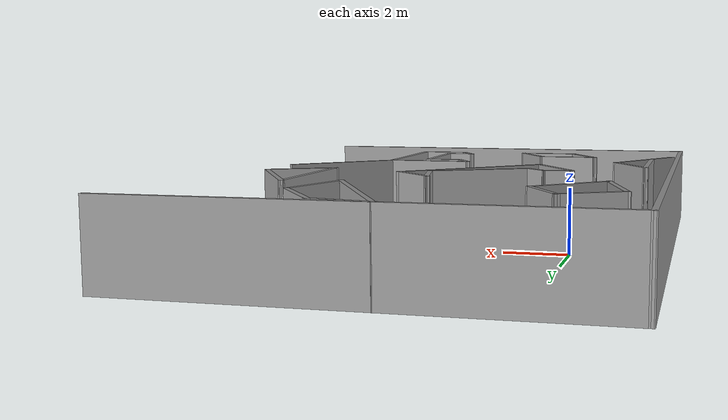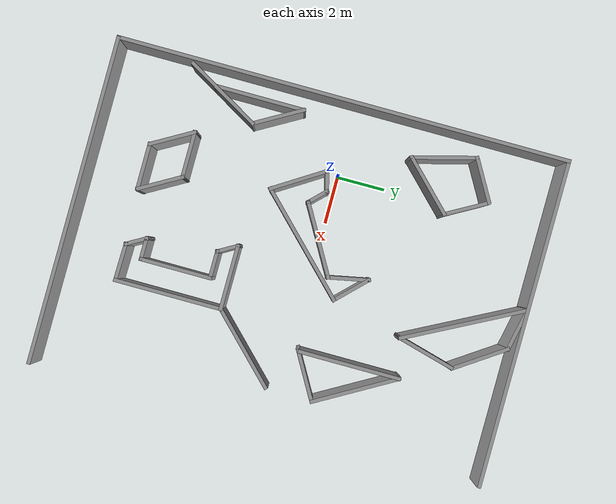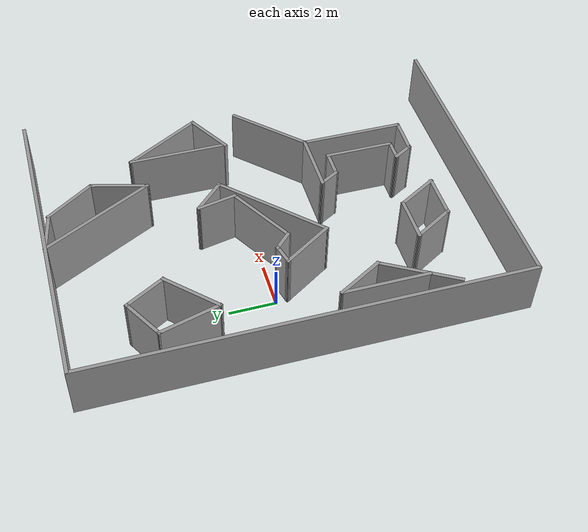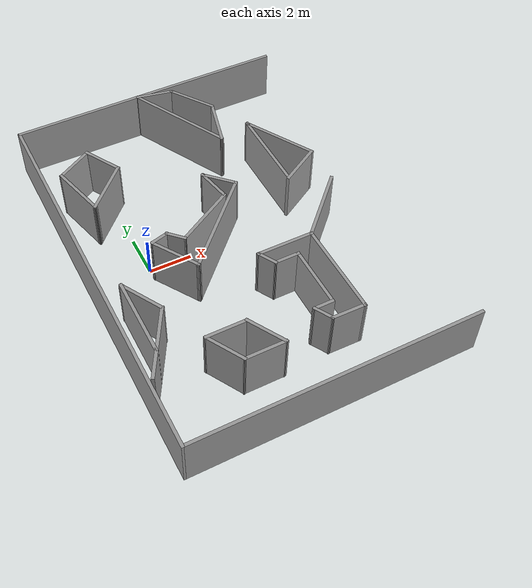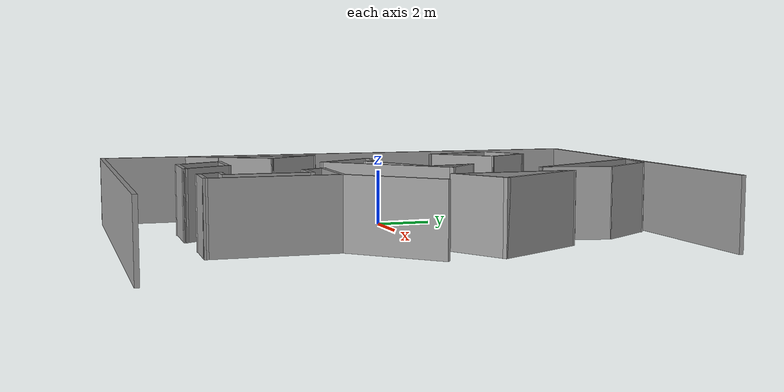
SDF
<?xml version='1.0'?>
<sdf version='1.7'>
  <model name='new20240614_v2'>
    <pose>3.81273 -0.610792 0 0 -0 0</pose>

    <link name='Wall_25'>
      <collision name='Wall_25_Collision'>
        <geometry>
          <box>
            <size>13.5374 0.15 2.5</size>
          </box>
        </geometry>
        <pose>0 0 1.25 0 -0 0</pose>
      </collision>
      <visual name='Wall_25_Visual'>
        <pose>0 0 1.25 0 -0 0</pose>
        <geometry>
          <box>
            <size>13.5374 0.15 2.5</size>
          </box>
        </geometry>
        <material>
          <script>
            <uri>file://media/materials/scripts/gazebo.material</uri>
            <name>Gazebo/Grey</name>
          </script>
          <ambient>1 1 1 1</ambient>
        </material>
        <meta>
          <layer>0</layer>
        </meta>
      </visual>
      <pose>0.015259 -9.30316 0 0 -0 3.1406</pose>
    </link>
    <link name='Wall_26'>
      <collision name='Wall_26_Collision'>
        <geometry>
          <box>
            <size>18.75 0.15 2.5</size>
          </box>
        </geometry>
        <pose>0 0 1.25 0 -0 0</pose>
      </collision>
      <visual name='Wall_26_Visual'>
        <pose>0 0 1.25 0 -0 0</pose>
        <geometry>
          <box>
            <size>18.75 0.15 2.5</size>
          </box>
        </geometry>
        <material>
          <script>
            <uri>file://media/materials/scripts/gazebo.material</uri>
            <name>Gazebo/Grey</name>
          </script>
          <ambient>1 1 1 1</ambient>
        </material>
        <meta>
          <layer>0</layer>
        </meta>
      </visual>
      <pose>-6.70904 0.003487 0 0 -0 1.5708</pose>
    </link>
    <link name='Wall_27'>
      <collision name='Wall_27_Collision'>
        <geometry>
          <box>
            <size>13.5374 0.15 2.5</size>
          </box>
        </geometry>
        <pose>0 0 1.25 0 -0 0</pose>
      </collision>
      <visual name='Wall_27_Visual'>
        <pose>0 0 1.25 0 -0 0</pose>
        <geometry>
          <box>
            <size>13.5374 0.15 2.5</size>
          </box>
        </geometry>
        <material>
          <script>
            <uri>file://media/materials/scripts/gazebo.material</uri>
            <name>Gazebo/Grey</name>
          </script>
          <ambient>1 1 1 1</ambient>
        </material>
        <meta>
          <layer>0</layer>
        </meta>
      </visual>
      <pose>0.015259 9.29683 0 0 -0 -0.000994</pose>
    </link>
    <link name='Wall_32'>
      <collision name='Wall_32_Collision'>
        <geometry>
          <box>
            <size>2 0.15 2.5</size>
          </box>
        </geometry>
        <pose>0 0 1.25 0 -0 0</pose>
      </collision>
      <visual name='Wall_32_Visual'>
        <pose>0 0 1.25 0 -0 0</pose>
        <geometry>
          <box>
            <size>2 0.15 2.5</size>
          </box>
        </geometry>
        <material>
          <script>
            <uri>file://media/materials/scripts/gazebo.material</uri>
            <name>Gazebo/Grey</name>
          </script>
          <ambient>1 1 1 1</ambient>
        </material>
        <meta>
          <layer>0</layer>
        </meta>
      </visual>
      <pose>-3.40506 -6.16944 0 0 -0 2.0944</pose>
    </link>
    <link name='Wall_33'>
      <collision name='Wall_33_Collision'>
        <geometry>
          <box>
            <size>2 0.15 2.5</size>
          </box>
        </geometry>
        <pose>0 0 1.25 0 -0 0</pose>
      </collision>
      <visual name='Wall_33_Visual'>
        <pose>0 0 1.25 0 -0 0</pose>
        <geometry>
          <box>
            <size>2 0.15 2.5</size>
          </box>
        </geometry>
        <material>
          <script>
            <uri>file://media/materials/scripts/gazebo.material</uri>
            <name>Gazebo/Grey</name>
          </script>
          <ambient>1 1 1 1</ambient>
        </material>
        <meta>
          <layer>0</layer>
        </meta>
      </visual>
      <pose>-2.94256 -5.36836 0 0 -0 0</pose>
    </link>
    <link name='Wall_34'>
      <collision name='Wall_34_Collision'>
        <geometry>
          <box>
            <size>2 0.15 2.5</size>
          </box>
        </geometry>
        <pose>0 0 1.25 0 -0 0</pose>
      </collision>
      <visual name='Wall_34_Visual'>
        <pose>0 0 1.25 0 -0 0</pose>
        <geometry>
          <box>
            <size>2 0.15 2.5</size>
          </box>
        </geometry>
        <material>
          <script>
            <uri>file://media/materials/scripts/gazebo.material</uri>
            <name>Gazebo/Grey</name>
          </script>
          <ambient>1 1 1 1</ambient>
        </material>
        <meta>
          <layer>0</layer>
        </meta>
      </visual>
      <pose>-1.55506 -6.16944 0 0 -0 -1.0472</pose>
    </link>
    <link name='Wall_35'>
      <collision name='Wall_35_Collision'>
        <geometry>
          <box>
            <size>2 0.15 2.5</size>
          </box>
        </geometry>
        <pose>0 0 1.25 0 -0 0</pose>
      </collision>
      <visual name='Wall_35_Visual'>
        <pose>0 0 1.25 0 -0 0</pose>
        <geometry>
          <box>
            <size>2 0.15 2.5</size>
          </box>
        </geometry>
        <material>
          <script>
            <uri>file://media/materials/scripts/gazebo.material</uri>
            <name>Gazebo/Grey</name>
          </script>
          <ambient>1 1 1 1</ambient>
        </material>
        <meta>
          <layer>0</layer>
        </meta>
      </visual>
      <pose>-2.01756 -6.97051 0 0 -0 3.14159</pose>
    </link>
    <link name='Wall_37'>
      <collision name='Wall_37_Collision'>
        <geometry>
          <box>
            <size>3.5 0.15 2.5</size>
          </box>
        </geometry>
        <pose>0 0 1.25 0 -0 0</pose>
      </collision>
      <visual name='Wall_37_Visual'>
        <pose>0 0 1.25 0 -0 0</pose>
        <geometry>
          <box>
            <size>3.5 0.15 2.5</size>
          </box>
        </geometry>
        <material>
          <script>
            <uri>file://media/materials/scripts/gazebo.material</uri>
            <name>Gazebo/Grey</name>
          </script>
          <ambient>1 1 1 1</ambient>
        </material>
        <meta>
          <layer>0</layer>
        </meta>
      </visual>
      <pose>-5.65353 -4.69398 0 0 -0 1.0472</pose>
    </link>
    <link name='Wall_38'>
      <collision name='Wall_38_Collision'>
        <geometry>
          <box>
            <size>2.25 0.15 2.5</size>
          </box>
        </geometry>
        <pose>0 0 1.25 0 -0 0</pose>
      </collision>
      <visual name='Wall_38_Visual'>
        <pose>0 0 1.25 0 -0 0</pose>
        <geometry>
          <box>
            <size>2.25 0.15 2.5</size>
          </box>
        </geometry>
        <material>
          <script>
            <uri>file://media/materials/scripts/gazebo.material</uri>
            <name>Gazebo/Grey</name>
          </script>
          <ambient>1 1 1 1</ambient>
        </material>
        <meta>
          <layer>0</layer>
        </meta>
      </visual>
      <pose>-5.34103 -2.33406 0 0 -0 2.0944</pose>
    </link>
    <link name='Wall_39'>
      <collision name='Wall_39_Collision'>
        <geometry>
          <box>
            <size>3.75 0.15 2.5</size>
          </box>
        </geometry>
        <pose>0 0 1.25 0 -0 0</pose>
      </collision>
      <visual name='Wall_39_Visual'>
        <pose>0 0 1.25 0 -0 0</pose>
        <geometry>
          <box>
            <size>3.75 0.15 2.5</size>
          </box>
        </geometry>
        <material>
          <script>
            <uri>file://media/materials/scripts/gazebo.material</uri>
            <name>Gazebo/Grey</name>
          </script>
          <ambient>1 1 1 1</ambient>
        </material>
        <meta>
          <layer>0</layer>
        </meta>
      </visual>
      <pose>-5.86603 -3.22474 0 0 -0 -1.5708</pose>
    </link>
    <link name='Wall_43'>
      <collision name='Wall_43_Collision'>
        <geometry>
          <box>
            <size>2.50852 0.15 2.5</size>
          </box>
        </geometry>
        <pose>0 0 1.25 0 -0 0</pose>
      </collision>
      <visual name='Wall_43_Visual'>
        <pose>0 0 1.25 0 -0 0</pose>
        <geometry>
          <box>
            <size>2.50852 0.15 2.5</size>
          </box>
        </geometry>
        <material>
          <script>
            <uri>file://media/materials/scripts/gazebo.material</uri>
            <name>Gazebo/Grey</name>
          </script>
          <ambient>1 1 1 1</ambient>
        </material>
        <meta>
          <layer>0</layer>
        </meta>
      </visual>
      <pose>-3.13755 -0.873678 0 0 -0 -1.00315</pose>
    </link>
    <link name='Wall_44'>
      <collision name='Wall_44_Collision'>
        <geometry>
          <box>
            <size>5.25 0.15 2.5</size>
          </box>
        </geometry>
        <pose>0 0 1.25 0 -0 0</pose>
      </collision>
      <visual name='Wall_44_Visual'>
        <pose>0 0 1.25 0 -0 0</pose>
        <geometry>
          <box>
            <size>5.25 0.15 2.5</size>
          </box>
        </geometry>
        <material>
          <script>
            <uri>file://media/materials/scripts/gazebo.material</uri>
            <name>Gazebo/Grey</name>
          </script>
          <ambient>1 1 1 1</ambient>
        </material>
        <meta>
          <layer>0</layer>
        </meta>
      </visual>
      <pose>-0.700408 -0.064873 0 0 -0 0.785398</pose>
    </link>
    <link name='Wall_45'>
      <collision name='Wall_45_Collision'>
        <geometry>
          <box>
            <size>1.75 0.15 2.5</size>
          </box>
        </geometry>
        <pose>0 0 1.25 0 -0 0</pose>
      </collision>
      <visual name='Wall_45_Visual'>
        <pose>0 0 1.25 0 -0 0</pose>
        <geometry>
          <box>
            <size>1.75 0.15 2.5</size>
          </box>
        </geometry>
        <material>
          <script>
            <uri>file://media/materials/scripts/gazebo.material</uri>
            <name>Gazebo/Grey</name>
          </script>
          <ambient>1 1 1 1</ambient>
        </material>
        <meta>
          <layer>0</layer>
        </meta>
      </visual>
      <pose>0.537029 2.30393 0 0 -0 2.35619</pose>
    </link>
    <link name='Wall_46'>
      <collision name='Wall_46_Collision'>
        <geometry>
          <box>
            <size>1.77406 0.15 2.5</size>
          </box>
        </geometry>
        <pose>0 0 1.25 0 -0 0</pose>
      </collision>
      <visual name='Wall_46_Visual'>
        <pose>0 0 1.25 0 -0 0</pose>
        <geometry>
          <box>
            <size>1.77406 0.15 2.5</size>
          </box>
        </geometry>
        <material>
          <script>
            <uri>file://media/materials/scripts/gazebo.material</uri>
            <name>Gazebo/Grey</name>
          </script>
          <ambient>1 1 1 1</ambient>
        </material>
        <meta>
          <layer>0</layer>
        </meta>
      </visual>
      <pose>0.131875 2.07362 0 0 -0 -1.37179</pose>
    </link>
    <link name='Wall_49'>
      <collision name='Wall_49_Collision'>
        <geometry>
          <box>
            <size>3.25 0.15 2.5</size>
          </box>
        </geometry>
        <pose>0 0 1.25 0 -0 0</pose>
      </collision>
      <visual name='Wall_49_Visual'>
        <pose>0 0 1.25 0 -0 0</pose>
        <geometry>
          <box>
            <size>3.25 0.15 2.5</size>
          </box>
        </geometry>
        <material>
          <script>
            <uri>file://media/materials/scripts/gazebo.material</uri>
            <name>Gazebo/Grey</name>
          </script>
          <ambient>1 1 1 1</ambient>
        </material>
        <meta>
          <layer>0</layer>
        </meta>
      </visual>
      <pose>-1.04993 0.502615 0 0 -0 -2.61799</pose>
    </link>
    <link name='Wall_50'>
      <collision name='Wall_50_Collision'>
        <geometry>
          <box>
            <size>1 0.15 2.5</size>
          </box>
        </geometry>
        <pose>0 0 1.25 0 -0 0</pose>
      </collision>
      <visual name='Wall_50_Visual'>
        <pose>0 0 1.25 0 -0 0</pose>
        <geometry>
          <box>
            <size>1 0.15 2.5</size>
          </box>
        </geometry>
        <material>
          <script>
            <uri>file://media/materials/scripts/gazebo.material</uri>
            <name>Gazebo/Grey</name>
          </script>
          <ambient>1 1 1 1</ambient>
        </material>
        <meta>
          <layer>0</layer>
        </meta>
      </visual>
      <pose>-2.69279 0.028135 0 0 -0 2.35619</pose>
    </link>
    <link name='Wall_51'>
      <collision name='Wall_51_Collision'>
        <geometry>
          <box>
            <size>0.955584 0.15 2.5</size>
          </box>
        </geometry>
        <pose>0 0 1.25 0 -0 0</pose>
      </collision>
      <visual name='Wall_51_Visual'>
        <pose>0 0 1.25 0 -0 0</pose>
        <geometry>
          <box>
            <size>0.955584 0.15 2.5</size>
          </box>
        </geometry>
        <material>
          <script>
            <uri>file://media/materials/scripts/gazebo.material</uri>
            <name>Gazebo/Grey</name>
          </script>
          <ambient>1 1 1 1</ambient>
        </material>
        <meta>
          <layer>0</layer>
        </meta>
      </visual>
      <pose>-3.38245 0.224648 0 0 -0 -2.88042</pose>
    </link>
    <link name='Wall_53'>
      <collision name='Wall_53_Collision'>
        <geometry>
          <box>
            <size>2 0.15 2.5</size>
          </box>
        </geometry>
        <pose>0 0 1.25 0 -0 0</pose>
      </collision>
      <visual name='Wall_53_Visual'>
        <pose>0 0 1.25 0 -0 0</pose>
        <geometry>
          <box>
            <size>2 0.15 2.5</size>
          </box>
        </geometry>
        <material>
          <script>
            <uri>file://media/materials/scripts/gazebo.material</uri>
            <name>Gazebo/Grey</name>
          </script>
          <ambient>1 1 1 1</ambient>
        </material>
        <meta>
          <layer>0</layer>
        </meta>
      </visual>
      <pose>-5.06576 6.20686 0 0 -0 -2.61799</pose>
    </link>
    <link name='Wall_54'>
      <collision name='Wall_54_Collision'>
        <geometry>
          <box>
            <size>2.75 0.15 2.5</size>
          </box>
        </geometry>
        <pose>0 0 1.25 0 -0 0</pose>
      </collision>
      <visual name='Wall_54_Visual'>
        <pose>0 0 1.25 0 -0 0</pose>
        <geometry>
          <box>
            <size>2.75 0.15 2.5</size>
          </box>
        </geometry>
        <material>
          <script>
            <uri>file://media/materials/scripts/gazebo.material</uri>
            <name>Gazebo/Grey</name>
          </script>
          <ambient>1 1 1 1</ambient>
        </material>
        <meta>
          <layer>0</layer>
        </meta>
      </visual>
      <pose>-5.53037 4.48865 0 0 -0 -1.309</pose>
    </link>
    <link name='Wall_55'>
      <collision name='Wall_55_Collision'>
        <geometry>
          <box>
            <size>2.75 0.15 2.5</size>
          </box>
        </geometry>
        <pose>0 0 1.25 0 -0 0</pose>
      </collision>
      <visual name='Wall_55_Visual'>
        <pose>0 0 1.25 0 -0 0</pose>
        <geometry>
          <box>
            <size>2.75 0.15 2.5</size>
          </box>
        </geometry>
        <material>
          <script>
            <uri>file://media/materials/scripts/gazebo.material</uri>
            <name>Gazebo/Grey</name>
          </script>
          <ambient>1 1 1 1</ambient>
        </material>
        <meta>
          <layer>0</layer>
        </meta>
      </visual>
      <pose>-4.27466 4.15219 0 0 -0 0.785398</pose>
    </link>
    <link name='Wall_56'>
      <collision name='Wall_56_Collision'>
        <geometry>
          <box>
            <size>1.98851 0.15 2.5</size>
          </box>
        </geometry>
        <pose>0 0 1.25 0 -0 0</pose>
      </collision>
      <visual name='Wall_56_Visual'>
        <pose>0 0 1.25 0 -0 0</pose>
        <geometry>
          <box>
            <size>1.98851 0.15 2.5</size>
          </box>
        </geometry>
        <material>
          <script>
            <uri>file://media/materials/scripts/gazebo.material</uri>
            <name>Gazebo/Grey</name>
          </script>
          <ambient>1 1 1 1</ambient>
        </material>
        <meta>
          <layer>0</layer>
        </meta>
      </visual>
      <pose>-3.81005 5.87039 0 0 -0 2.08813</pose>
    </link>
    <link name='Wall_59'>
      <collision name='Wall_59_Collision'>
        <geometry>
          <box>
            <size>4.25 0.15 2.5</size>
          </box>
        </geometry>
        <pose>0 0 1.25 0 -0 0</pose>
      </collision>
      <visual name='Wall_59_Visual'>
        <pose>0 0 1.25 0 -0 0</pose>
        <geometry>
          <box>
            <size>4.25 0.15 2.5</size>
          </box>
        </geometry>
        <material>
          <script>
            <uri>file://media/materials/scripts/gazebo.material</uri>
            <name>Gazebo/Grey</name>
          </script>
          <ambient>1 1 1 1</ambient>
        </material>
        <meta>
          <layer>0</layer>
        </meta>
      </visual>
      <pose>3.43781 3.02278 0 0 -0 1.5708</pose>
    </link>
    <link name='Wall_60'>
      <collision name='Wall_60_Collision'>
        <geometry>
          <box>
            <size>3.75 0.15 2.5</size>
          </box>
        </geometry>
        <pose>0 0 1.25 0 -0 0</pose>
      </collision>
      <visual name='Wall_60_Visual'>
        <pose>0 0 1.25 0 -0 0</pose>
        <geometry>
          <box>
            <size>3.75 0.15 2.5</size>
          </box>
        </geometry>
        <material>
          <script>
            <uri>file://media/materials/scripts/gazebo.material</uri>
            <name>Gazebo/Grey</name>
          </script>
          <ambient>1 1 1 1</ambient>
        </material>
        <meta>
          <layer>0</layer>
        </meta>
      </visual>
      <pose>4.33781 3.51394 0 0 -0 -1.0472</pose>
    </link>
    <link name='Wall_61'>
      <collision name='Wall_61_Collision'>
        <geometry>
          <box>
            <size>2.25 0.15 2.5</size>
          </box>
        </geometry>
        <pose>0 0 1.25 0 -0 0</pose>
      </collision>
      <visual name='Wall_61_Visual'>
        <pose>0 0 1.25 0 -0 0</pose>
        <geometry>
          <box>
            <size>2.25 0.15 2.5</size>
          </box>
        </geometry>
        <material>
          <script>
            <uri>file://media/materials/scripts/gazebo.material</uri>
            <name>Gazebo/Grey</name>
          </script>
          <ambient>1 1 1 1</ambient>
        </material>
        <meta>
          <layer>0</layer>
        </meta>
      </visual>
      <pose>4.32848 1.43009 0 0 -0 -2.61799</pose>
    </link>
    <link name='Wall_64'>
      <collision name='Wall_64_Collision'>
        <geometry>
          <box>
            <size>1 0.15 2.5</size>
          </box>
        </geometry>
        <pose>0 0 1.25 0 -0 0</pose>
      </collision>
      <visual name='Wall_64_Visual'>
        <pose>0 0 1.25 0 -0 0</pose>
        <geometry>
          <box>
            <size>1 0.15 2.5</size>
          </box>
        </geometry>
        <material>
          <script>
            <uri>file://media/materials/scripts/gazebo.material</uri>
            <name>Gazebo/Grey</name>
          </script>
          <ambient>1 1 1 1</ambient>
        </material>
        <meta>
          <layer>0</layer>
        </meta>
      </visual>
      <pose>0.926953 -6.46471 0 0 -0 2.0944</pose>
    </link>
    <link name='Wall_65'>
      <collision name='Wall_65_Collision'>
        <geometry>
          <box>
            <size>1 0.15 2.5</size>
          </box>
        </geometry>
        <pose>0 0 1.25 0 -0 0</pose>
      </collision>
      <visual name='Wall_65_Visual'>
        <pose>0 0 1.25 0 -0 0</pose>
        <geometry>
          <box>
            <size>1 0.15 2.5</size>
          </box>
        </geometry>
        <material>
          <script>
            <uri>file://media/materials/scripts/gazebo.material</uri>
            <name>Gazebo/Grey</name>
          </script>
          <ambient>1 1 1 1</ambient>
        </material>
        <meta>
          <layer>0</layer>
        </meta>
      </visual>
      <pose>1.13945 -6.09665 0 0 -0 0</pose>
    </link>
    <link name='Wall_66'>
      <collision name='Wall_66_Collision'>
        <geometry>
          <box>
            <size>3 0.15 2.5</size>
          </box>
        </geometry>
        <pose>0 0 1.25 0 -0 0</pose>
      </collision>
      <visual name='Wall_66_Visual'>
        <pose>0 0 1.25 0 -0 0</pose>
        <geometry>
          <box>
            <size>3 0.15 2.5</size>
          </box>
        </geometry>
        <material>
          <script>
            <uri>file://media/materials/scripts/gazebo.material</uri>
            <name>Gazebo/Grey</name>
          </script>
          <ambient>1 1 1 1</ambient>
        </material>
        <meta>
          <layer>0</layer>
        </meta>
      </visual>
      <pose>1.56445 -4.67165 0 0 -0 1.5708</pose>
    </link>
    <link name='Wall_67'>
      <collision name='Wall_67_Collision'>
        <geometry>
          <box>
            <size>1.25 0.15 2.5</size>
          </box>
        </geometry>
        <pose>0 0 1.25 0 -0 0</pose>
      </collision>
      <visual name='Wall_67_Visual'>
        <pose>0 0 1.25 0 -0 0</pose>
        <geometry>
          <box>
            <size>1.25 0.15 2.5</size>
          </box>
        </geometry>
        <material>
          <script>
            <uri>file://media/materials/scripts/gazebo.material</uri>
            <name>Gazebo/Grey</name>
          </script>
          <ambient>1 1 1 1</ambient>
        </material>
        <meta>
          <layer>0</layer>
        </meta>
      </visual>
      <pose>1.01445 -3.24665 0 0 -0 3.14159</pose>
    </link>
    <link name='Wall_68'>
      <collision name='Wall_68_Collision'>
        <geometry>
          <box>
            <size>1 0.15 2.5</size>
          </box>
        </geometry>
        <pose>0 0 1.25 0 -0 0</pose>
      </collision>
      <visual name='Wall_68_Visual'>
        <pose>0 0 1.25 0 -0 0</pose>
        <geometry>
          <box>
            <size>1 0.15 2.5</size>
          </box>
        </geometry>
        <material>
          <script>
            <uri>file://media/materials/scripts/gazebo.material</uri>
            <name>Gazebo/Grey</name>
          </script>
          <ambient>1 1 1 1</ambient>
        </material>
        <meta>
          <layer>0</layer>
        </meta>
      </visual>
      <pose>0.251953 -2.87859 0 0 -0 2.0944</pose>
    </link>
    <link name='Wall_69'>
      <collision name='Wall_69_Collision'>
        <geometry>
          <box>
            <size>2.75 0.15 2.5</size>
          </box>
        </geometry>
        <pose>0 0 1.25 0 -0 0</pose>
      </collision>
      <visual name='Wall_69_Visual'>
        <pose>0 0 1.25 0 -0 0</pose>
        <geometry>
          <box>
            <size>2.75 0.15 2.5</size>
          </box>
        </geometry>
        <material>
          <script>
            <uri>file://media/materials/scripts/gazebo.material</uri>
            <name>Gazebo/Grey</name>
          </script>
          <ambient>1 1 1 1</ambient>
        </material>
        <meta>
          <layer>0</layer>
        </meta>
      </visual>
      <pose>1.33945 -2.51052 0 0 -0 0</pose>
    </link>
    <link name='Wall_70'>
      <collision name='Wall_70_Collision'>
        <geometry>
          <box>
            <size>4.5 0.15 2.5</size>
          </box>
        </geometry>
        <pose>0 0 1.25 0 -0 0</pose>
      </collision>
      <visual name='Wall_70_Visual'>
        <pose>0 0 1.25 0 -0 0</pose>
        <geometry>
          <box>
            <size>4.5 0.15 2.5</size>
          </box>
        </geometry>
        <material>
          <script>
            <uri>file://media/materials/scripts/gazebo.material</uri>
            <name>Gazebo/Grey</name>
          </script>
          <ambient>1 1 1 1</ambient>
        </material>
        <meta>
          <layer>0</layer>
        </meta>
      </visual>
      <pose>2.63945 -4.68553 0 0 -0 -1.5708</pose>
    </link>
    <link name='Wall_71'>
      <collision name='Wall_71_Collision'>
        <geometry>
          <box>
            <size>1.65026 0.15 2.5</size>
          </box>
        </geometry>
        <pose>0 0 1.25 0 -0 0</pose>
      </collision>
      <visual name='Wall_71_Visual'>
        <pose>0 0 1.25 0 -0 0</pose>
        <geometry>
          <box>
            <size>1.65026 0.15 2.5</size>
          </box>
        </geometry>
        <material>
          <script>
            <uri>file://media/materials/scripts/gazebo.material</uri>
            <name>Gazebo/Grey</name>
          </script>
          <ambient>1 1 1 1</ambient>
        </material>
        <meta>
          <layer>0</layer>
        </meta>
      </visual>
      <pose>1.88945 -6.84665 0 0 -0 3.12309</pose>
    </link>
    <link name='Wall_73'>
      <collision name='Wall_73_Collision'>
        <geometry>
          <box>
            <size>3.75 0.15 2.5</size>
          </box>
        </geometry>
        <pose>0 0 1.25 0 -0 0</pose>
      </collision>
      <visual name='Wall_73_Visual'>
        <pose>0 0 1.25 0 -0 0</pose>
        <geometry>
          <box>
            <size>3.75 0.15 2.5</size>
          </box>
        </geometry>
        <material>
          <script>
            <uri>file://media/materials/scripts/gazebo.material</uri>
            <name>Gazebo/Grey</name>
          </script>
          <ambient>1 1 1 1</ambient>
        </material>
        <meta>
          <layer>0</layer>
        </meta>
      </visual>
      <pose>3.91224 -1.23773 0 0 -0 0.785398</pose>
    </link>
    <link name='Wall_77'>
      <collision name='Wall_77_Collision'>
        <geometry>
          <box>
            <size>5.33374 0.15 2.5</size>
          </box>
        </geometry>
        <pose>0 0 1.25 0 -0 0</pose>
      </collision>
      <visual name='Wall_77_Visual'>
        <pose>0 0 1.25 0 -0 0</pose>
        <geometry>
          <box>
            <size>5.33374 0.15 2.5</size>
          </box>
        </geometry>
        <material>
          <script>
            <uri>file://media/materials/scripts/gazebo.material</uri>
            <name>Gazebo/Grey</name>
          </script>
          <ambient>1 1 1 1</ambient>
        </material>
        <meta>
          <layer>0</layer>
        </meta>
      </visual>
      <pose>0.65523 6.98842 0 0 -0 -1.08766</pose>
    </link>
    <link name='Wall_78'>
      <collision name='Wall_78_Collision'>
        <geometry>
          <box>
            <size>2.5 0.15 2.5</size>
          </box>
        </geometry>
        <pose>0 0 1.25 0 -0 0</pose>
      </collision>
      <visual name='Wall_78_Visual'>
        <pose>0 0 1.25 0 -0 0</pose>
        <geometry>
          <box>
            <size>2.5 0.15 2.5</size>
          </box>
        </geometry>
        <material>
          <script>
            <uri>file://media/materials/scripts/gazebo.material</uri>
            <name>Gazebo/Grey</name>
          </script>
          <ambient>1 1 1 1</ambient>
        </material>
        <meta>
          <layer>0</layer>
        </meta>
      </visual>
      <pose>2.16342 5.82817 0 0 -0 1.309</pose>
    </link>
    <link name='Wall_79'>
      <collision name='Wall_79_Collision'>
        <geometry>
          <box>
            <size>2.48042 0.15 2.5</size>
          </box>
        </geometry>
        <pose>0 0 1.25 0 -0 0</pose>
      </collision>
      <visual name='Wall_79_Visual'>
        <pose>0 0 1.25 0 -0 0</pose>
        <geometry>
          <box>
            <size>2.48042 0.15 2.5</size>
          </box>
        </geometry>
        <material>
          <script>
            <uri>file://media/materials/scripts/gazebo.material</uri>
            <name>Gazebo/Grey</name>
          </script>
          <ambient>1 1 1 1</ambient>
        </material>
        <meta>
          <layer>0</layer>
        </meta>
      </visual>
      <pose>1.8088 7.9708 0 0 -0 2.17163</pose>
    </link>
    <link name='Wall_80'>
      <collision name='Wall_80_Collision'>
        <geometry>
          <box>
            <size>1.88494 0.15 2.5</size>
          </box>
        </geometry>
        <pose>0 0 1.25 0 -0 0</pose>
      </collision>
      <visual name='Wall_80_Visual'>
        <pose>0 0 1.25 0 -0 0</pose>
        <geometry>
          <box>
            <size>1.88494 0.15 2.5</size>
          </box>
        </geometry>
        <material>
          <script>
            <uri>file://media/materials/scripts/gazebo.material</uri>
            <name>Gazebo/Grey</name>
          </script>
          <ambient>1 1 1 1</ambient>
        </material>
        <meta>
          <layer>0</layer>
        </meta>
      </visual>
      <pose>0.300609 9.10779 0 0 -0 2.93746</pose>
    </link>
    <static>1</static>
  </model>
</sdf>
